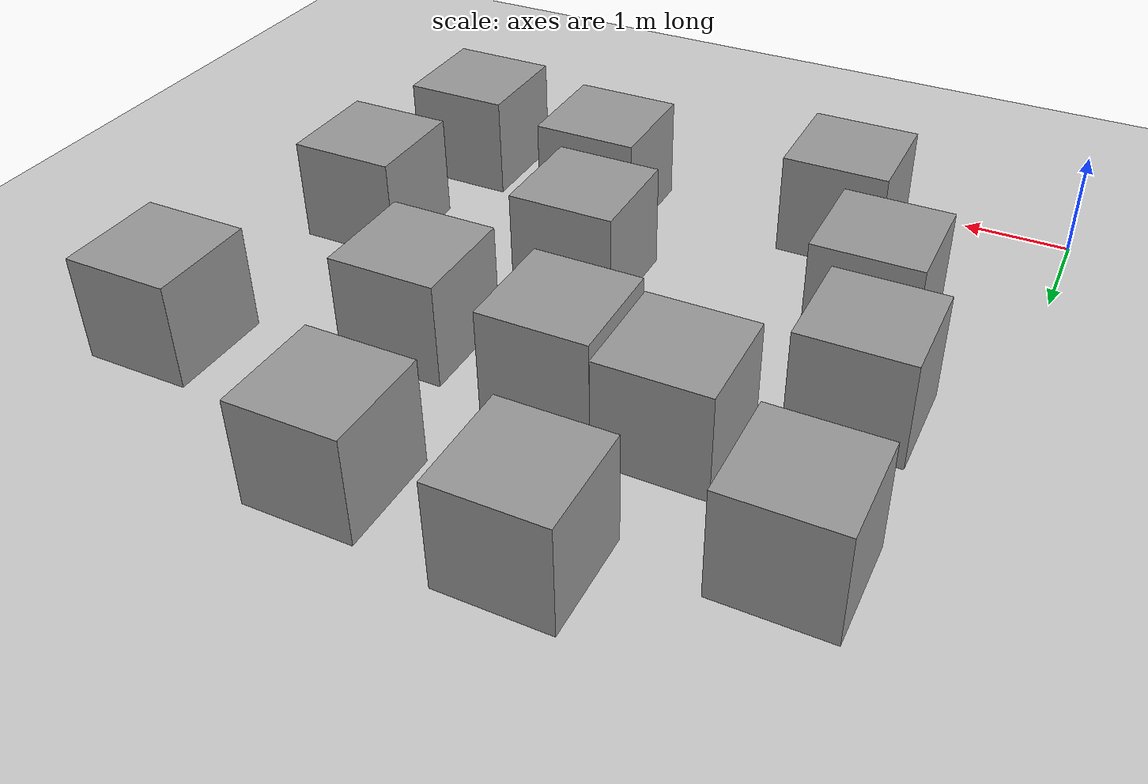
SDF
<sdf version="1.6">
 <world name="default">
  <light name="sun" type="directional">
   <pose>0 0 10 0 -0 0</pose>
   <diffuse>0.8 0.8 0.8 1</diffuse>
   <specular>0.2 0.2 0.2 1</specular>
   <attenuation>
    <range>1000</range>
    <constant>0.9</constant>
    <linear>0.01</linear>
    <quadratic>0.001</quadratic>
   </attenuation>
   <direction>-0.5 0.1 -0.9</direction>
  </light>
  <model name="ground_plane">
   <static>1</static>
   <link name="link">
    <collision name="collision">
     <geometry><plane><normal>0 0 1</normal><size>100 100</size></plane></geometry>
     <surface>
      <contact><collide_bitmask>65535</collide_bitmask></contact>
      <friction><ode><mu>100</mu><mu2>50</mu2></ode></friction>
     </surface>
    </collision>
    <visual name="visual">
     <cast_shadows>0</cast_shadows>
     <geometry><plane><normal>0 0 1</normal><size>100 100</size></plane></geometry>
     <material>
      <script><uri>file://media/materials/scripts/gazebo.material</uri><name>Gazebo/Grey</name></script>
     </material>
    </visual>
   </link>
  </model>
  <gravity>0 0 -9.8</gravity>
  <magnetic_field>6e-06 2.3e-05 -4.2e-05</magnetic_field>
  <atmosphere type="adiabatic"/>
  <physics name="default_physics" default="0" type="ode">
   <max_step_size>0.001</max_step_size>
   <real_time_factor>1</real_time_factor>
   <real_time_update_rate>1000</real_time_update_rate>
  </physics>
  <scene><ambient>0.4 0.4 0.4 1</ambient><background>0.7 0.7 0.7 1</background><shadows>1</shadows></scene>
  <audio><device>default</device></audio>
  <spherical_coordinates>
   <surface_model>EARTH_WGS84</surface_model>
   <latitude_deg>0</latitude_deg>
   <longitude_deg>0</longitude_deg>
   <elevation>0</elevation>
   <heading_deg>0</heading_deg>
  </spherical_coordinates>
  <model name="unit_box">
   <pose>2.318 4.22185 0.5 0 -0 0</pose>
   <link name="link">
    <inertial>
     <mass>1</mass>
     <inertia>
      <ixx>0.166667</ixx>
      <ixy>0</ixy>
      <ixz>0</ixz>
      <iyy>0.166667</iyy>
      <iyz>0</iyz>
      <izz>0.166667</izz>
     </inertia>
    </inertial>
    <collision name="collision"><geometry><box><size>1 1 1</size></box></geometry></collision>
    <visual name="visual">
     <geometry><box><size>1 1 1</size></box></geometry>
     <material>
      <script><name>Gazebo/Grey</name><uri>file://media/materials/scripts/gazebo.material</uri></script>
     </material>
    </visual>
   </link>
  </model>
  <model name="unit_box_0">
   <pose>4.4063 1.13815 0.5 0 -0 0</pose>
   <link name="link">
    <inertial>
     <mass>1</mass>
     <inertia>
      <ixx>0.166667</ixx>
      <ixy>0</ixy>
      <ixz>0</ixz>
      <iyy>0.166667</iyy>
      <iyz>0</iyz>
      <izz>0.166667</izz>
     </inertia>
    </inertial>
    <collision name="collision"><geometry><box><size>1 1 1</size></box></geometry></collision>
    <visual name="visual">
     <geometry><box><size>1 1 1</size></box></geometry>
     <material>
      <script><name>Gazebo/Grey</name><uri>file://media/materials/scripts/gazebo.material</uri></script>
     </material>
    </visual>
   </link>
  </model>
  <model name="unit_box_1">
   <pose>4.86413 3.92606 0.5 0 -0 0</pose>
   <link name="link">
    <inertial>
     <mass>1</mass>
     <inertia>
      <ixx>0.166667</ixx>
      <ixy>0</ixy>
      <ixz>0</ixz>
      <iyy>0.166667</iyy>
      <iyz>0</iyz>
      <izz>0.166667</izz>
     </inertia>
    </inertial>
    <collision name="collision"><geometry><box><size>1 1 1</size></box></geometry></collision>
    <visual name="visual">
     <geometry><box><size>1 1 1</size></box></geometry>
     <material>
      <script><name>Gazebo/Grey</name><uri>file://media/materials/scripts/gazebo.material</uri></script>
     </material>
    </visual>
   </link>
  </model>
  <model name="unit_box_2">
   <pose>2.05646 0.703171 0.5 0 -0 0</pose>
   <link name="link">
    <inertial>
     <mass>1</mass>
     <inertia>
      <ixx>0.166667</ixx>
      <ixy>0</ixy>
      <ixz>0</ixz>
      <iyy>0.166667</iyy>
      <iyz>0</iyz>
      <izz>0.166667</izz>
     </inertia>
    </inertial>
    <collision name="collision"><geometry><box><size>1 1 1</size></box></geometry></collision>
    <visual name="visual">
     <geometry><box><size>1 1 1</size></box></geometry>
     <material>
      <script><name>Gazebo/Grey</name><uri>file://media/materials/scripts/gazebo.material</uri></script>
     </material>
    </visual>
   </link>
  </model>
  <model name="unit_box_3">
   <pose>4.01193 2.404 0.5 0 -0 0</pose>
   <link name="link">
    <inertial>
     <mass>1</mass>
     <inertia>
      <ixx>0.166667</ixx>
      <ixy>0</ixy>
      <ixz>0</ixz>
      <iyy>0.166667</iyy>
      <iyz>0</iyz>
      <izz>0.166667</izz>
     </inertia>
    </inertial>
    <collision name="collision"><geometry><box><size>1 1 1</size></box></geometry></collision>
    <visual name="visual">
     <geometry><box><size>1 1 1</size></box></geometry>
     <material>
      <script><name>Gazebo/Grey</name><uri>file://media/materials/scripts/gazebo.material</uri></script>
     </material>
    </visual>
   </link>
  </model>
  <model name="unit_box_4">
   <pose>1.09984 3.23572 0.5 0 -0 0</pose>
   <link name="link">
    <inertial>
     <mass>1</mass>
     <inertia>
      <ixx>0.166667</ixx>
      <ixy>0</ixy>
      <ixz>0</ixz>
      <iyy>0.166667</iyy>
      <iyz>0</iyz>
      <izz>0.166667</izz>
     </inertia>
    </inertial>
    <collision name="collision"><geometry><box><size>1 1 1</size></box></geometry></collision>
    <visual name="visual">
     <geometry><box><size>1 1 1</size></box></geometry>
     <material>
      <script><name>Gazebo/Grey</name><uri>file://media/materials/scripts/gazebo.material</uri></script>
     </material>
    </visual>
   </link>
  </model>
  <model name="unit_box_5">
   <pose>1.37585 1.99797 0.5 0 -0 0</pose>
   <link name="link">
    <inertial>
     <mass>1</mass>
     <inertia>
      <ixx>0.166667</ixx>
      <ixy>0</ixy>
      <ixz>0</ixz>
      <iyy>0.166667</iyy>
      <iyz>0</iyz>
      <izz>0.166667</izz>
     </inertia>
    </inertial>
    <collision name="collision"><geometry><box><size>1 1 1</size></box></geometry></collision>
    <visual name="visual">
     <geometry><box><size>1 1 1</size></box></geometry>
     <material>
      <script><name>Gazebo/Grey</name><uri>file://media/materials/scripts/gazebo.material</uri></script>
     </material>
    </visual>
   </link>
  </model>
  <model name="unit_box_6">
   <pose>3.40228 4.05842 0.5 0 -0 0</pose>
   <link name="link">
    <inertial>
     <mass>1</mass>
     <inertia>
      <ixx>0.166667</ixx>
      <ixy>0</ixy>
      <ixz>0</ixz>
      <iyy>0.166667</iyy>
      <iyz>0</iyz>
      <izz>0.166667</izz>
     </inertia>
    </inertial>
    <collision name="collision"><geometry><box><size>1 1 1</size></box></geometry></collision>
    <visual name="visual">
     <geometry><box><size>1 1 1</size></box></geometry>
     <material>
      <script><name>Gazebo/Grey</name><uri>file://media/materials/scripts/gazebo.material</uri></script>
     </material>
    </visual>
   </link>
  </model>
  <model name="unit_box_7">
   <pose>6.28141 2.44867 0.5 0 -0 0</pose>
   <link name="link">
    <inertial>
     <mass>1</mass>
     <inertia>
      <ixx>0.166667</ixx>
      <ixy>0</ixy>
      <ixz>0</ixz>
      <iyy>0.166667</iyy>
      <iyz>0</iyz>
      <izz>0.166667</izz>
     </inertia>
    </inertial>
    <collision name="collision"><geometry><box><size>1 1 1</size></box></geometry></collision>
    <visual name="visual">
     <geometry><box><size>1 1 1</size></box></geometry>
     <material>
      <script><name>Gazebo/Grey</name><uri>file://media/materials/scripts/gazebo.material</uri></script>
     </material>
    </visual>
   </link>
  </model>
  <model name="unit_box_8">
   <pose>4.46884 5.75563 0.5 0 -0 0</pose>
   <link name="link">
    <inertial>
     <mass>1</mass>
     <inertia>
      <ixx>0.166667</ixx>
      <ixy>0</ixy>
      <ixz>0</ixz>
      <iyy>0.166667</iyy>
      <iyz>0</iyz>
      <izz>0.166667</izz>
     </inertia>
    </inertial>
    <collision name="collision"><geometry><box><size>1 1 1</size></box></geometry></collision>
    <visual name="visual">
     <geometry><box><size>1 1 1</size></box></geometry>
     <material>
      <script><name>Gazebo/Grey</name><uri>file://media/materials/scripts/gazebo.material</uri></script>
     </material>
    </visual>
   </link>
  </model>
  <model name="unit_box_9">
   <pose>5.96565 0.91652 0.5 0 -0 0</pose>
   <link name="link">
    <inertial>
     <mass>1</mass>
     <inertia>
      <ixx>0.166667</ixx>
      <ixy>0</ixy>
      <ixz>0</ixz>
      <iyy>0.166667</iyy>
      <iyz>0</iyz>
      <izz>0.166667</izz>
     </inertia>
    </inertial>
    <collision name="collision"><geometry><box><size>1 1 1</size></box></geometry></collision>
    <visual name="visual">
     <geometry><box><size>1 1 1</size></box></geometry>
     <material>
      <script><name>Gazebo/Grey</name><uri>file://media/materials/scripts/gazebo.material</uri></script>
     </material>
    </visual>
   </link>
  </model>
  <model name="unit_box_10">
   <pose>1.02028 5.10224 0.5 0 -0 0</pose>
   <link name="link">
    <inertial>
     <mass>1</mass>
     <inertia>
      <ixx>0.166667</ixx>
      <ixy>0</ixy>
      <ixz>0</ixz>
      <iyy>0.166667</iyy>
      <iyz>0</iyz>
      <izz>0.166667</izz>
     </inertia>
    </inertial>
    <collision name="collision"><geometry><box><size>1 1 1</size></box></geometry></collision>
    <visual name="visual">
     <geometry><box><size>1 1 1</size></box></geometry>
     <material>
      <script><name>Gazebo/Grey</name><uri>file://media/materials/scripts/gazebo.material</uri></script>
     </material>
    </visual>
   </link>
  </model>
  <model name="unit_box_11">
   <pose>6.7905 4.86678 0.5 0 -0 0</pose>
   <link name="link">
    <inertial>
     <mass>1</mass>
     <inertia>
      <ixx>0.166667</ixx>
      <ixy>0</ixy>
      <ixz>0</ixz>
      <iyy>0.166667</iyy>
      <iyz>0</iyz>
      <izz>0.166667</izz>
     </inertia>
    </inertial>
    <collision name="collision"><geometry><box><size>1 1 1</size></box></geometry></collision>
    <visual name="visual">
     <geometry><box><size>1 1 1</size></box></geometry>
     <material>
      <script><name>Gazebo/Grey</name><uri>file://media/materials/scripts/gazebo.material</uri></script>
     </material>
    </visual>
   </link>
  </model>
  <model name="unit_box_12">
   <pose>2.76152 5.85708 0.5 0 -0 0</pose>
   <link name="link">
    <inertial>
     <mass>1</mass>
     <inertia>
      <ixx>0.166667</ixx>
      <ixy>0</ixy>
      <ixz>0</ixz>
      <iyy>0.166667</iyy>
      <iyz>0</iyz>
      <izz>0.166667</izz>
     </inertia>
    </inertial>
    <collision name="collision"><geometry><box><size>1 1 1</size></box></geometry></collision>
    <visual name="visual">
     <geometry><box><size>1 1 1</size></box></geometry>
     <material>
      <script><name>Gazebo/Grey</name><uri>file://media/materials/scripts/gazebo.material</uri></script>
     </material>
    </visual>
   </link>
  </model>
 </world>
</sdf>
